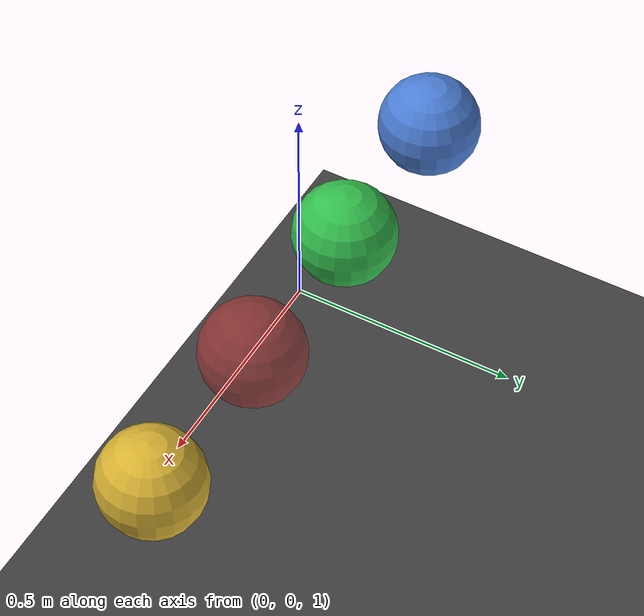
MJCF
<mujoco model="bitmask-demo">
  <compiler angle="radian"/>
  <option gravity="0 0 -9.81" timestep="0.002"/>

  <worldbody>
    <geom name="ground" type="plane" size="5 5 0.1" rgba="0.25 0.25 0.25 1"/>

    <body name="full" pos="-0.6 0 1.0">
      <freejoint name="full_free"/>
      <geom name="full_geom" type="sphere" size="0.12" mass="1.0"
            contype="1" conaffinity="1" rgba="0.3 0.5 0.85 1"/>
    </body>

    <body name="layer2" pos="-0.2 0 1.0">
      <freejoint name="layer2_free"/>
      <geom name="layer2_geom" type="sphere" size="0.12" mass="1.0"
            contype="2" conaffinity="2" rgba="0.2 0.75 0.3 1"/>
    </body>

    <body name="off" pos="0.2 0 1.0">
      <freejoint name="off_free"/>
      <geom name="off_geom" type="sphere" size="0.12" mass="1.0"
            contype="0" conaffinity="0" rgba="0.85 0.2 0.2 0.5"/>
    </body>

    <body name="type_only" pos="0.6 0 1.0">
      <freejoint name="type_free"/>
      <geom name="type_geom" type="sphere" size="0.12" mass="1.0"
            contype="1" conaffinity="0" rgba="0.85 0.7 0.2 1"/>
    </body>
  </worldbody>
</mujoco>
